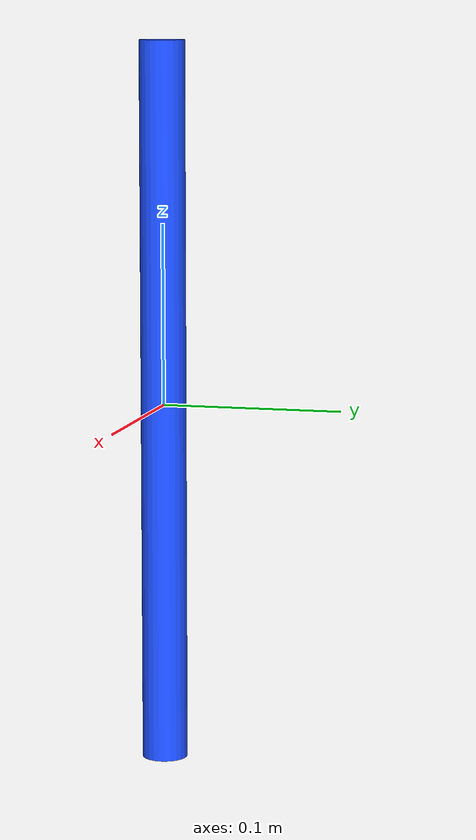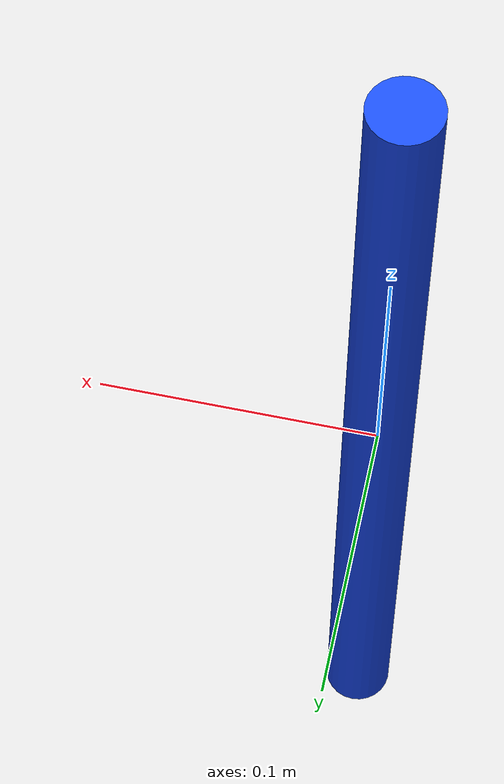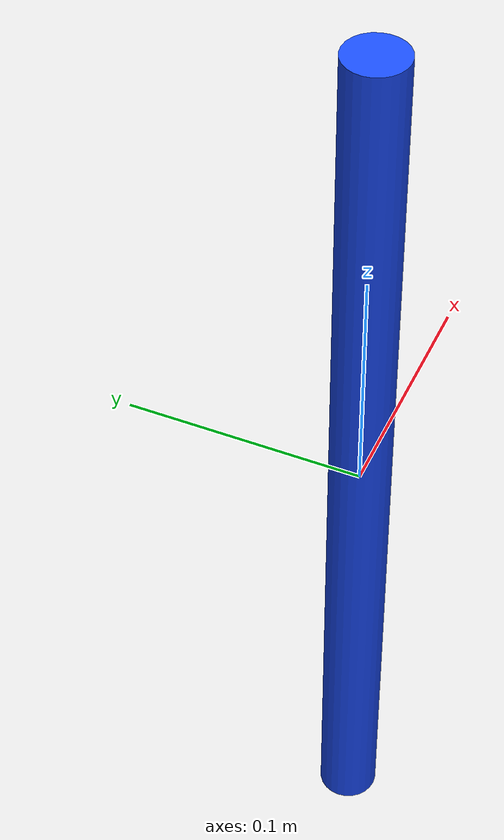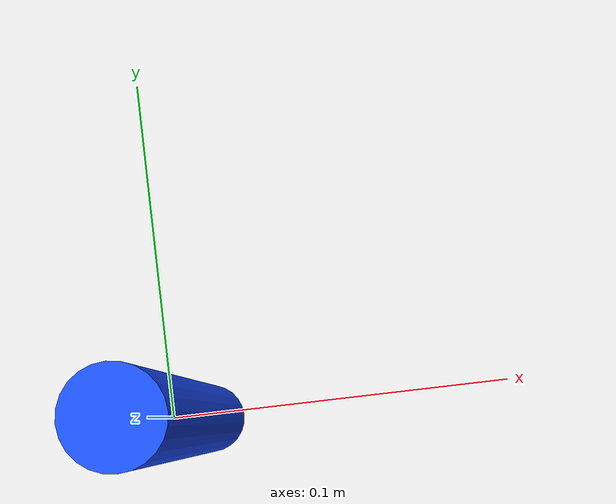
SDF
<?xml version="1.0" ?>
<sdf version="1.6">
  <!-- 保留 40cm × 1.5cm 的细长几何以兼容 get_planning_scene_server
       的 circle/line 检测阈值，但改成蓝色外观，用于验证"抓取另一个物体"。 -->
  <model name="red_cylinder">
    <static>false</static>
    <link name="link">
      <inertial>
        <mass>0.050</mass>
        <inertia>
          <ixx>0.000000204</ixx>
          <ixy>0</ixy>
          <ixz>0</ixz>
          <iyy>0.000000204</iyy>
          <iyz>0</iyz>
          <izz>0.000000039</izz>
        </inertia>
      </inertial>
      <collision name="collision">
        <geometry>
          <cylinder>
            <radius>0.015</radius>
            <length>0.40</length>
          </cylinder>
        </geometry>
        <surface>
          <friction>
            <ode>
              <mu>1.2</mu>
              <mu2>1.2</mu2>
              <fdir1>0 0 1</fdir1>
              <slip1>0.0005</slip1>
              <slip2>0.0005</slip2>
            </ode>
            <torsional>
              <coefficient>0.1</coefficient>
              <surface_radius>0.015</surface_radius>
              <use_patch_radius>true</use_patch_radius>
            </torsional>
          </friction>
          <contact>
            <ode>
              <kp>1e5</kp>
              <kd>10</kd>
              <max_vel>0.1</max_vel>
              <min_depth>0.001</min_depth>
              <soft_cfm>0.01</soft_cfm>
              <soft_erp>0.2</soft_erp>
            </ode>
          </contact>
          <bounce>
            <restitution_coefficient>0.2</restitution_coefficient>
            <threshold>0.01</threshold>
          </bounce>
        </surface>
      </collision>
      <visual name="visual">
        <geometry>
          <cylinder>
            <radius>0.0125</radius>
            <length>0.40</length>
          </cylinder>
        </geometry>
        <material>
          <!-- 亮蓝色，便于在 Gazebo GUI 里和原红色版本区分 -->
          <ambient>0.1 0.3 1.0 1</ambient>
          <diffuse>0.1 0.3 1.0 1</diffuse>
          <specular>0.6 0.6 0.7 1</specular>
          <emissive>0 0 0.15 1</emissive>
        </material>
      </visual>
    </link>
  </model>
</sdf>
